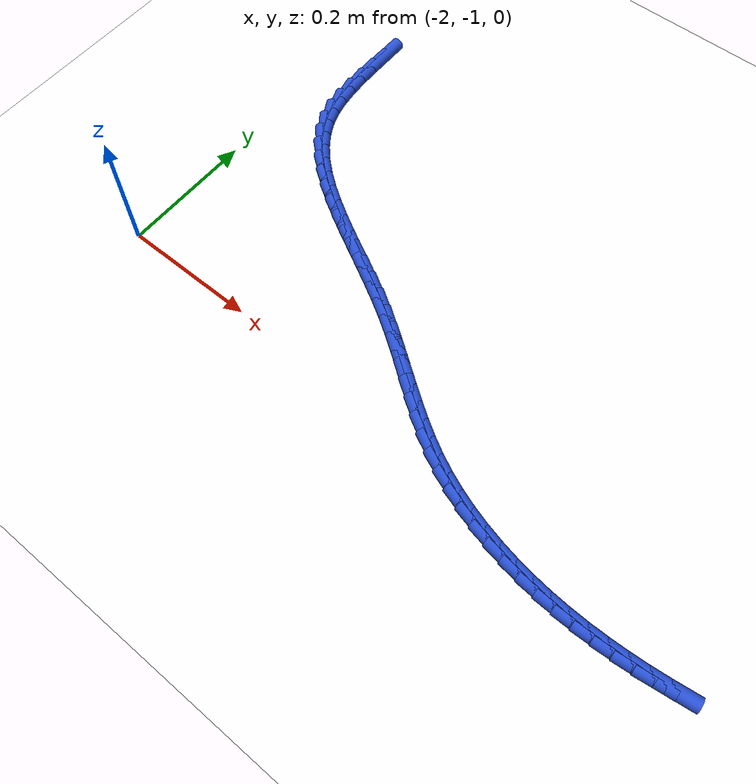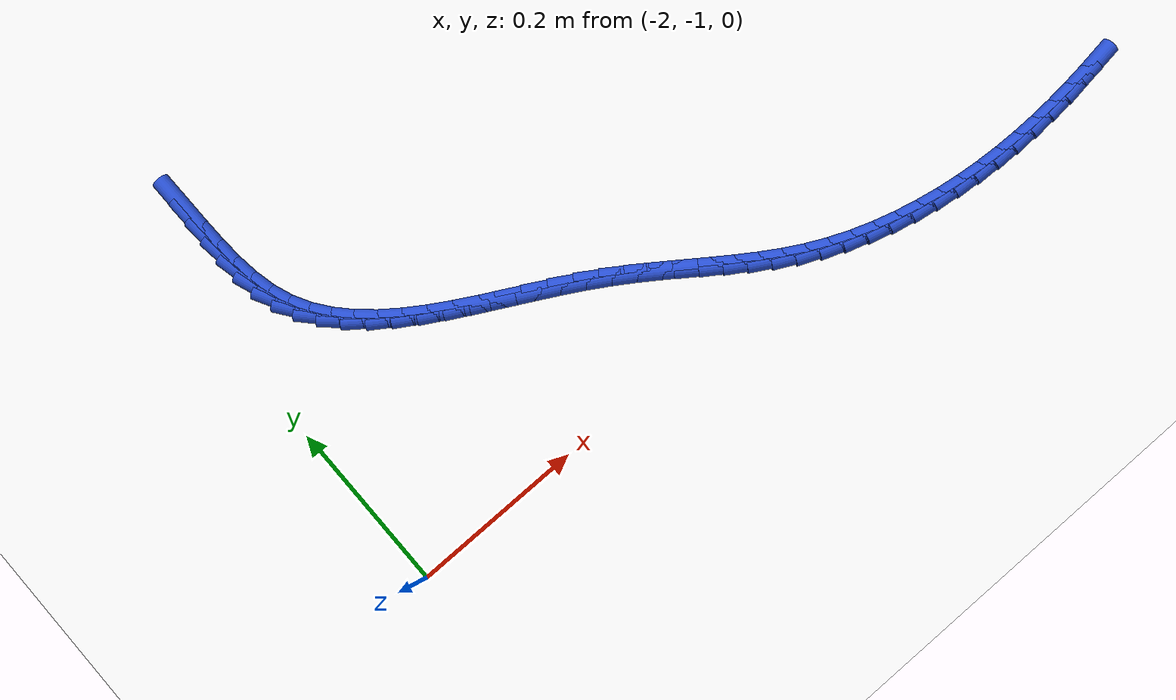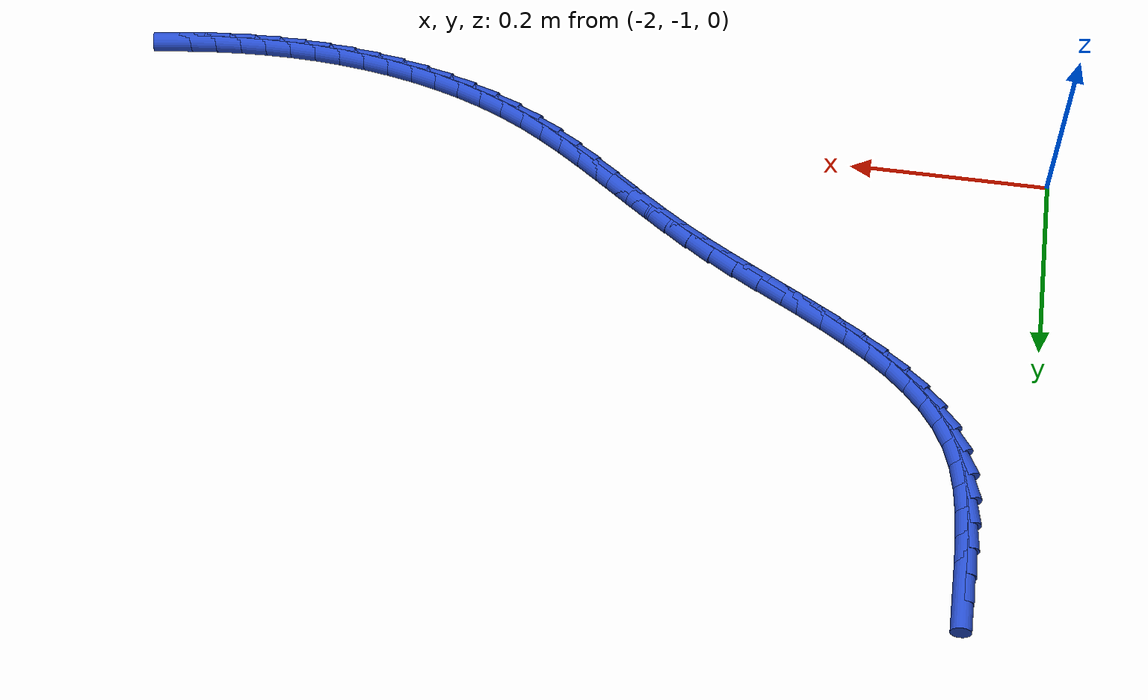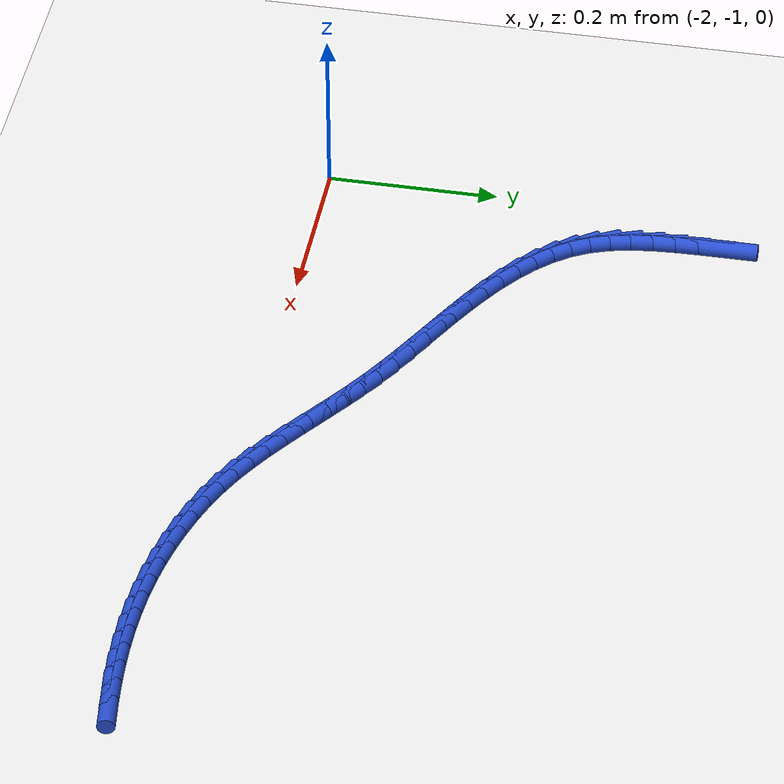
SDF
<sdf version="1.6">
 <world name="default">
  <model name="ground_plane">
   <static>1</static>
   <link name="link">
    <collision name="collision">
     <geometry><plane><normal>0 0 1</normal><size>100 100</size></plane></geometry>
     <surface><friction><ode><mu>100</mu><mu2>50</mu2></ode></friction></surface>
    </collision>
    <visual name="visual">
     <cast_shadows>0</cast_shadows>
     <geometry><plane><normal>0 0 1</normal><size>100 100</size></plane></geometry>
     <material>
      <script><uri>file://media/materials/scripts/gazebo.material</uri><name>Gazebo/WhiteGlow</name></script>
     </material>
    </visual>
   </link>
  </model>
  <model name="line">
   <link name="link_147">
    <pose>-1.9412054585175993 -0.5235679579144558 0.01 0 1.57 -1.565693392259698</pose>
    <collision name="collision">
     <geometry><cylinder><radius>0.01</radius><length>0.08</length></cylinder></geometry>
    </collision>
    <visual name="visual">
     <material>
      <script><name>Gazebo/Blue</name><uri>file://media/materials/scripts/gazebo.material</uri></script>
     </material>
     <geometry><cylinder><radius>0.01</radius><length>0.08</length></cylinder></geometry>
    </visual>
   </link>
   <link name="link_148">
    <pose>-1.9410633277836056 -0.5514204610808664 0.01 0 1.57 -1.5495278775254344</pose>
    <collision name="collision">
     <geometry><cylinder><radius>0.01</radius><length>0.08</length></cylinder></geometry>
    </collision>
    <visual name="visual">
     <material>
      <script><name>Gazebo/Blue</name><uri>file://media/materials/scripts/gazebo.material</uri></script>
     </material>
     <geometry><cylinder><radius>0.01</radius><length>0.08</length></cylinder></geometry>
    </visual>
   </link>
   <link name="link_149">
    <pose>-1.9404797118373278 -0.5788567794165138 0.01 0 1.57 -1.5101381506906533</pose>
    <collision name="collision">
     <geometry><cylinder><radius>0.01</radius><length>0.08</length></cylinder></geometry>
    </collision>
    <visual name="visual">
     <material>
      <script><name>Gazebo/Blue</name><uri>file://media/materials/scripts/gazebo.material</uri></script>
     </material>
     <geometry><cylinder><radius>0.01</radius><length>0.08</length></cylinder></geometry>
    </visual>
   </link>
   <link name="link_150">
    <pose>-1.9388560911898993 -0.6055906665622794 0.01 0 1.57 -1.4447591682950134</pose>
    <collision name="collision">
     <geometry><cylinder><radius>0.01</radius><length>0.08</length></cylinder></geometry>
    </collision>
    <visual name="visual">
     <material>
      <script><name>Gazebo/Blue</name><uri>file://media/materials/scripts/gazebo.material</uri></script>
     </material>
     <geometry><cylinder><radius>0.01</radius><length>0.08</length></cylinder></geometry>
    </visual>
   </link>
   <link name="link_151">
    <pose>-1.9355939463524516 -0.6313358761590443 0.01 0 1.57 -1.3497396200064236</pose>
    <collision name="collision">
     <geometry><cylinder><radius>0.01</radius><length>0.08</length></cylinder></geometry>
    </collision>
    <visual name="visual">
     <material>
      <script><name>Gazebo/Blue</name><uri>file://media/materials/scripts/gazebo.material</uri></script>
     </material>
     <geometry><cylinder><radius>0.01</radius><length>0.08</length></cylinder></geometry>
    </visual>
   </link>
   <link name="link_152">
    <pose>-1.930094757836118 -0.6558061618476898 0.01 0 1.57 -1.2219027315089006</pose>
    <collision name="collision">
     <geometry><cylinder><radius>0.01</radius><length>0.08</length></cylinder></geometry>
    </collision>
    <visual name="visual">
     <material>
      <script><name>Gazebo/Blue</name><uri>file://media/materials/scripts/gazebo.material</uri></script>
     </material>
     <geometry><cylinder><radius>0.01</radius><length>0.08</length></cylinder></geometry>
    </visual>
   </link>
   <link name="link_153">
    <pose>-1.921760837553876 -0.6787156975271635 0.01 0 1.57 -1.0729683852541145</pose>
    <collision name="collision">
     <geometry><cylinder><radius>0.01</radius><length>0.08</length></cylinder></geometry>
    </collision>
    <visual name="visual">
     <material>
      <script><name>Gazebo/Blue</name><uri>file://media/materials/scripts/gazebo.material</uri></script>
     </material>
     <geometry><cylinder><radius>0.01</radius><length>0.08</length></cylinder></geometry>
    </visual>
   </link>
   <link name="link_154">
    <pose>-1.9102446904209849 -0.6999051249747059 0.01 0 1.57 -0.9359597692959905</pose>
    <collision name="collision">
     <geometry><cylinder><radius>0.01</radius><length>0.08</length></cylinder></geometry>
    </collision>
    <visual name="visual">
     <material>
      <script><name>Gazebo/Blue</name><uri>file://media/materials/scripts/gazebo.material</uri></script>
     </material>
     <geometry><cylinder><radius>0.01</radius><length>0.08</length></cylinder></geometry>
    </visual>
   </link>
   <link name="link_155">
    <pose>-1.8957986429535878 -0.7195182845563518 0.01 0 1.57 -0.8191234645407338</pose>
    <collision name="collision">
     <geometry><cylinder><radius>0.01</radius><length>0.08</length></cylinder></geometry>
    </collision>
    <visual name="visual">
     <material>
      <script><name>Gazebo/Blue</name><uri>file://media/materials/scripts/gazebo.material</uri></script>
     </material>
     <geometry><cylinder><radius>0.01</radius><length>0.08</length></cylinder></geometry>
    </visual>
   </link>
   <link name="link_156">
    <pose>-1.878763048088789 -0.7377435123458143 0.01 0 1.57 -0.7232603857188299</pose>
    <collision name="collision">
     <geometry><cylinder><radius>0.01</radius><length>0.08</length></cylinder></geometry>
    </collision>
    <visual name="visual">
     <material>
      <script><name>Gazebo/Blue</name><uri>file://media/materials/scripts/gazebo.material</uri></script>
     </material>
     <geometry><cylinder><radius>0.01</radius><length>0.08</length></cylinder></geometry>
    </visual>
   </link>
   <link name="link_157">
    <pose>-1.859478258763692 -0.7547691444168062 0.01 0 1.57 -0.6470894507639876</pose>
    <collision name="collision">
     <geometry><cylinder><radius>0.01</radius><length>0.08</length></cylinder></geometry>
    </collision>
    <visual name="visual">
     <material>
      <script><name>Gazebo/Blue</name><uri>file://media/materials/scripts/gazebo.material</uri></script>
     </material>
     <geometry><cylinder><radius>0.01</radius><length>0.08</length></cylinder></geometry>
    </visual>
   </link>
   <link name="link_158">
    <pose>-1.8382846279154004 -0.7707835168430401 0.01 0 1.57 -0.5885104384549876</pose>
    <collision name="collision">
     <geometry><cylinder><radius>0.01</radius><length>0.08</length></cylinder></geometry>
    </collision>
    <visual name="visual">
     <material>
      <script><name>Gazebo/Blue</name><uri>file://media/materials/scripts/gazebo.material</uri></script>
     </material>
     <geometry><cylinder><radius>0.01</radius><length>0.08</length></cylinder></geometry>
    </visual>
   </link>
   <link name="link_159">
    <pose>-1.8155225084810176 -0.7859749656982288 0.01 0 1.57 -0.5453915427457064</pose>
    <collision name="collision">
     <geometry><cylinder><radius>0.01</radius><length>0.08</length></cylinder></geometry>
    </collision>
    <visual name="visual">
     <material>
      <script><name>Gazebo/Blue</name><uri>file://media/materials/scripts/gazebo.material</uri></script>
     </material>
     <geometry><cylinder><radius>0.01</radius><length>0.08</length></cylinder></geometry>
    </visual>
   </link>
   <link name="link_160">
    <pose>-1.7915322533976463 -0.8005318270560846 0.01 0 1.57 -0.515946134763628</pose>
    <collision name="collision">
     <geometry><cylinder><radius>0.01</radius><length>0.08</length></cylinder></geometry>
    </collision>
    <visual name="visual">
     <material>
      <script><name>Gazebo/Blue</name><uri>file://media/materials/scripts/gazebo.material</uri></script>
     </material>
     <geometry><cylinder><radius>0.01</radius><length>0.08</length></cylinder></geometry>
    </visual>
   </link>
   <link name="link_161">
    <pose>-1.7666542156023914 -0.814642436990321 0.01 0 1.57 -0.4988694153396283</pose>
    <collision name="collision">
     <geometry><cylinder><radius>0.01</radius><length>0.08</length></cylinder></geometry>
    </collision>
    <visual name="visual">
     <material>
      <script><name>Gazebo/Blue</name><uri>file://media/materials/scripts/gazebo.material</uri></script>
     </material>
     <geometry><cylinder><radius>0.01</radius><length>0.08</length></cylinder></geometry>
    </visual>
   </link>
   <link name="link_162">
    <pose>-1.7412287480323556 -0.8284951315746502 0.01 0 1.57 -0.493365830148943</pose>
    <collision name="collision">
     <geometry><cylinder><radius>0.01</radius><length>0.08</length></cylinder></geometry>
    </collision>
    <visual name="visual">
     <material>
      <script><name>Gazebo/Blue</name><uri>file://media/materials/scripts/gazebo.material</uri></script>
     </material>
     <geometry><cylinder><radius>0.01</radius><length>0.08</length></cylinder></geometry>
    </visual>
   </link>
   <link name="link_163">
    <pose>-1.715596203624642 -0.8422782468827849 0.01 0 1.57 -0.4991405770521892</pose>
    <collision name="collision">
     <geometry><cylinder><radius>0.01</radius><length>0.08</length></cylinder></geometry>
    </collision>
    <visual name="visual">
     <material>
      <script><name>Gazebo/Blue</name><uri>file://media/materials/scripts/gazebo.material</uri></script>
     </material>
     <geometry><cylinder><radius>0.01</radius><length>0.08</length></cylinder></geometry>
    </visual>
   </link>
   <link name="link_164">
    <pose>-1.6900969353163546 -0.8561801189884379 0.01 0 1.57 -0.5163885351941331</pose>
    <collision name="collision">
     <geometry><cylinder><radius>0.01</radius><length>0.08</length></cylinder></geometry>
    </collision>
    <visual name="visual">
     <material>
      <script><name>Gazebo/Blue</name><uri>file://media/materials/scripts/gazebo.material</uri></script>
     </material>
     <geometry><cylinder><radius>0.01</radius><length>0.08</length></cylinder></geometry>
    </visual>
   </link>
   <link name="link_165">
    <pose>-1.665071296044597 -0.8703890839653219 0.01 0 1.57 -0.5457053394387333</pose>
    <collision name="collision">
     <geometry><cylinder><radius>0.01</radius><length>0.08</length></cylinder></geometry>
    </collision>
    <visual name="visual">
     <material>
      <script><name>Gazebo/Blue</name><uri>file://media/materials/scripts/gazebo.material</uri></script>
     </material>
     <geometry><cylinder><radius>0.01</radius><length>0.08</length></cylinder></geometry>
    </visual>
   </link>
   <link name="link_166">
    <pose>-1.6408575462444048 -0.8850919556679366 0.01 0 1.57 -0.5802711988247439</pose>
    <collision name="collision">
     <geometry><cylinder><radius>0.01</radius><length>0.08</length></cylinder></geometry>
    </collision>
    <visual name="visual">
     <material>
      <script><name>Gazebo/Blue</name><uri>file://media/materials/scripts/gazebo.material</uri></script>
     </material>
     <geometry><cylinder><radius>0.01</radius><length>0.08</length></cylinder></geometry>
    </visual>
   </link>
   <link name="link_167">
    <pose>-1.6176029815830661 -0.9003366280218642 0.01 0 1.57 -0.6060369276432618</pose>
    <collision name="collision">
     <geometry><cylinder><radius>0.01</radius><length>0.08</length></cylinder></geometry>
    </collision>
    <visual name="visual">
     <material>
      <script><name>Gazebo/Blue</name><uri>file://media/materials/scripts/gazebo.material</uri></script>
     </material>
     <geometry><cylinder><radius>0.01</radius><length>0.08</length></cylinder></geometry>
    </visual>
   </link>
   <link name="link_168">
    <pose>-1.5951135077850493 -0.9159226461753234 0.01 0 1.57 -0.6208469716776307</pose>
    <collision name="collision">
     <geometry><cylinder><radius>0.01</radius><length>0.08</length></cylinder></geometry>
    </collision>
    <visual name="visual">
     <material>
      <script><name>Gazebo/Blue</name><uri>file://media/materials/scripts/gazebo.material</uri></script>
     </material>
     <geometry><cylinder><radius>0.01</radius><length>0.08</length></cylinder></geometry>
    </visual>
   </link>
   <link name="link_169">
    <pose>-1.5731596319449463 -0.931623804059678 0.01 0 1.57 -0.62413550454431</pose>
    <collision name="collision">
     <geometry><cylinder><radius>0.01</radius><length>0.08</length></cylinder></geometry>
    </collision>
    <visual name="visual">
     <material>
      <script><name>Gazebo/Blue</name><uri>file://media/materials/scripts/gazebo.material</uri></script>
     </material>
     <geometry><cylinder><radius>0.01</radius><length>0.08</length></cylinder></geometry>
    </visual>
   </link>
   <link name="link_170">
    <pose>-1.5515118611573495 -0.94721389560629 0.01 0 1.57 -0.6154706405623119</pose>
    <collision name="collision">
     <geometry><cylinder><radius>0.01</radius><length>0.08</length></cylinder></geometry>
    </collision>
    <visual name="visual">
     <material>
      <script><name>Gazebo/Blue</name><uri>file://media/materials/scripts/gazebo.material</uri></script>
     </material>
     <geometry><cylinder><radius>0.01</radius><length>0.08</length></cylinder></geometry>
    </visual>
   </link>
   <link name="link_171">
    <pose>-1.5299407025168503 -0.9624667147465223 0.01 0 1.57 -0.5945592304344008</pose>
    <collision name="collision">
     <geometry><cylinder><radius>0.01</radius><length>0.08</length></cylinder></geometry>
    </collision>
    <visual name="visual">
     <material>
      <script><name>Gazebo/Blue</name><uri>file://media/materials/scripts/gazebo.material</uri></script>
     </material>
     <geometry><cylinder><radius>0.01</radius><length>0.08</length></cylinder></geometry>
    </visual>
   </link>
   <link name="link_172">
    <pose>-1.508216663118041 -0.9771560554117379 0.01 0 1.57 -0.5612994702595147</pose>
    <collision name="collision">
     <geometry><cylinder><radius>0.01</radius><length>0.08</length></cylinder></geometry>
    </collision>
    <visual name="visual">
     <material>
      <script><name>Gazebo/Blue</name><uri>file://media/materials/scripts/gazebo.material</uri></script>
     </material>
     <geometry><cylinder><radius>0.01</radius><length>0.08</length></cylinder></geometry>
    </visual>
   </link>
   <link name="link_173">
    <pose>-1.4861102500555134 -0.9910557115332994 0.01 0 1.57 -0.5158845846183133</pose>
    <collision name="collision">
     <geometry><cylinder><radius>0.01</radius><length>0.08</length></cylinder></geometry>
    </collision>
    <visual name="visual">
     <material>
      <script><name>Gazebo/Blue</name><uri>file://media/materials/scripts/gazebo.material</uri></script>
     </material>
     <geometry><cylinder><radius>0.01</radius><length>0.08</length></cylinder></geometry>
    </visual>
   </link>
   <link name="link_174">
    <pose>-1.4633919704238594 -1.0039394770425696 0.01 0 1.57 -0.4592482782267334</pose>
    <collision name="collision">
     <geometry><cylinder><radius>0.01</radius><length>0.08</length></cylinder></geometry>
    </collision>
    <visual name="visual">
     <material>
      <script><name>Gazebo/Blue</name><uri>file://media/materials/scripts/gazebo.material</uri></script>
     </material>
     <geometry><cylinder><radius>0.01</radius><length>0.08</length></cylinder></geometry>
    </visual>
   </link>
   <link name="link_175">
    <pose>-1.4398398751101051 -1.0155862913137839 0.01 0 1.57 -0.39933567850433144</pose>
    <collision name="collision">
     <geometry><cylinder><radius>0.01</radius><length>0.08</length></cylinder></geometry>
    </collision>
    <visual name="visual">
     <material>
      <script><name>Gazebo/Blue</name><uri>file://media/materials/scripts/gazebo.material</uri></script>
     </material>
     <geometry><cylinder><radius>0.01</radius><length>0.08</length></cylinder></geometry>
    </visual>
   </link>
   <link name="link_176">
    <pose>-1.4154095098028219 -1.025896158738474 0.01 0 1.57 -0.34320142665440456</pose>
    <collision name="collision">
     <geometry><cylinder><radius>0.01</radius><length>0.08</length></cylinder></geometry>
    </collision>
    <visual name="visual">
     <material>
      <script><name>Gazebo/Blue</name><uri>file://media/materials/scripts/gazebo.material</uri></script>
     </material>
     <geometry><cylinder><radius>0.01</radius><length>0.08</length></cylinder></geometry>
    </visual>
   </link>
   <link name="link_177">
    <pose>-1.3902361589889771 -1.0348916793027918 0.01 0 1.57 -0.29064882476855985</pose>
    <collision name="collision">
     <geometry><cylinder><radius>0.01</radius><length>0.08</length></cylinder></geometry>
    </collision>
    <visual name="visual">
     <material>
      <script><name>Gazebo/Blue</name><uri>file://media/materials/scripts/gazebo.material</uri></script>
     </material>
     <geometry><cylinder><radius>0.01</radius><length>0.08</length></cylinder></geometry>
    </visual>
   </link>
   <link name="link_178">
    <pose>-1.3644630997695482 -1.0426009045663684 0.01 0 1.57 -0.2411574689138602</pose>
    <collision name="collision">
     <geometry><cylinder><radius>0.01</radius><length>0.08</length></cylinder></geometry>
    </collision>
    <visual name="visual">
     <material>
      <script><name>Gazebo/Blue</name><uri>file://media/materials/scripts/gazebo.material</uri></script>
     </material>
     <geometry><cylinder><radius>0.01</radius><length>0.08</length></cylinder></geometry>
    </visual>
   </link>
   <link name="link_179">
    <pose>-1.3382336092455127 -1.0490518860888367 0.01 0 1.57 -0.19421507858917425</pose>
    <collision name="collision">
     <geometry><cylinder><radius>0.01</radius><length>0.08</length></cylinder></geometry>
    </collision>
    <visual name="visual">
     <material>
      <script><name>Gazebo/Blue</name><uri>file://media/materials/scripts/gazebo.material</uri></script>
     </material>
     <geometry><cylinder><radius>0.01</radius><length>0.08</length></cylinder></geometry>
    </visual>
   </link>
   <link name="link_180">
    <pose>-1.3116909645178476 -1.0542726754298284 0.01 0 1.57 -0.14932085759857805</pose>
    <collision name="collision">
     <geometry><cylinder><radius>0.01</radius><length>0.08</length></cylinder></geometry>
    </collision>
    <visual name="visual">
     <material>
      <script><name>Gazebo/Blue</name><uri>file://media/materials/scripts/gazebo.material</uri></script>
     </material>
     <geometry><cylinder><radius>0.01</radius><length>0.08</length></cylinder></geometry>
    </visual>
   </link>
   <link name="link_181">
    <pose>-1.284978442687531 -1.058291324148976 0.01 0 1.57 -0.10602697099189412</pose>
    <collision name="collision">
     <geometry><cylinder><radius>0.01</radius><length>0.08</length></cylinder></geometry>
    </collision>
    <visual name="visual">
     <material>
      <script><name>Gazebo/Blue</name><uri>file://media/materials/scripts/gazebo.material</uri></script>
     </material>
     <geometry><cylinder><radius>0.01</radius><length>0.08</length></cylinder></geometry>
    </visual>
   </link>
   <link name="link_182">
    <pose>-1.258232807932639 -1.0611377570575744 0.01 0 1.57 -0.06455814948236004</pose>
    <collision name="collision">
     <geometry><cylinder><radius>0.01</radius><length>0.08</length></cylinder></geometry>
    </collision>
    <visual name="visual">
     <material>
      <script><name>Gazebo/Blue</name><uri>file://media/materials/scripts/gazebo.material</uri></script>
     </material>
     <geometry><cylinder><radius>0.01</radius><length>0.08</length></cylinder></geometry>
    </visual>
   </link>
   <link name="link_183">
    <pose>-1.2315091611443842 -1.0628653870213947 0.01 0 1.57 -0.025394973986702905</pose>
    <collision name="collision">
     <geometry><cylinder><radius>0.01</radius><length>0.08</length></cylinder></geometry>
    </collision>
    <visual name="visual">
     <material>
      <script><name>Gazebo/Blue</name><uri>file://media/materials/scripts/gazebo.material</uri></script>
     </material>
     <geometry><cylinder><radius>0.01</radius><length>0.08</length></cylinder></geometry>
    </visual>
   </link>
   <link name="link_184">
    <pose>-1.2048069467113547 -1.0635436348703204 0.01 0 1.57 0.011295557059813848</pose>
    <collision name="collision">
     <geometry><cylinder><radius>0.01</radius><length>0.08</length></cylinder></geometry>
    </collision>
    <visual name="visual">
     <material>
      <script><name>Gazebo/Blue</name><uri>file://media/materials/scripts/gazebo.material</uri></script>
     </material>
     <geometry><cylinder><radius>0.01</radius><length>0.08</length></cylinder></geometry>
    </visual>
   </link>
   <link name="link_185">
    <pose>-1.1781245383379768 -1.0632422293852006 0.01 0 1.57 0.045397816430656504</pose>
    <collision name="collision">
     <geometry><cylinder><radius>0.01</radius><length>0.08</length></cylinder></geometry>
    </collision>
    <visual name="visual">
     <material>
      <script><name>Gazebo/Blue</name><uri>file://media/materials/scripts/gazebo.material</uri></script>
     </material>
     <geometry><cylinder><radius>0.01</radius><length>0.08</length></cylinder></geometry>
    </visual>
   </link>
   <link name="link_186">
    <pose>-1.1514603097286777 -1.0620308993468839 0.01 0 1.57 0.07683548444849901</pose>
    <collision name="collision">
     <geometry><cylinder><radius>0.01</radius><length>0.08</length></cylinder></geometry>
    </collision>
    <visual name="visual">
     <material>
      <script><name>Gazebo/Blue</name><uri>file://media/materials/scripts/gazebo.material</uri></script>
     </material>
     <geometry><cylinder><radius>0.01</radius><length>0.08</length></cylinder></geometry>
    </visual>
   </link>
   <link name="link_187">
    <pose>-1.1248126345878844 -1.0599793735362184 0.01 0 1.57 0.10556560499703144</pose>
    <collision name="collision">
     <geometry><cylinder><radius>0.01</radius><length>0.08</length></cylinder></geometry>
    </collision>
    <visual name="visual">
     <material>
      <script><name>Gazebo/Blue</name><uri>file://media/materials/scripts/gazebo.material</uri></script>
     </material>
     <geometry><cylinder><radius>0.01</radius><length>0.08</length></cylinder></geometry>
    </visual>
   </link>
   <link name="link_188">
    <pose>-1.0981798866200227 -1.0571573807340522 0.01 0 1.57 0.13157222522736578</pose>
    <collision name="collision">
     <geometry><cylinder><radius>0.01</radius><length>0.08</length></cylinder></geometry>
    </collision>
    <visual name="visual">
     <material>
      <script><name>Gazebo/Blue</name><uri>file://media/materials/scripts/gazebo.material</uri></script>
     </material>
     <geometry><cylinder><radius>0.01</radius><length>0.08</length></cylinder></geometry>
    </visual>
   </link>
  </model>
 </world>
</sdf>
